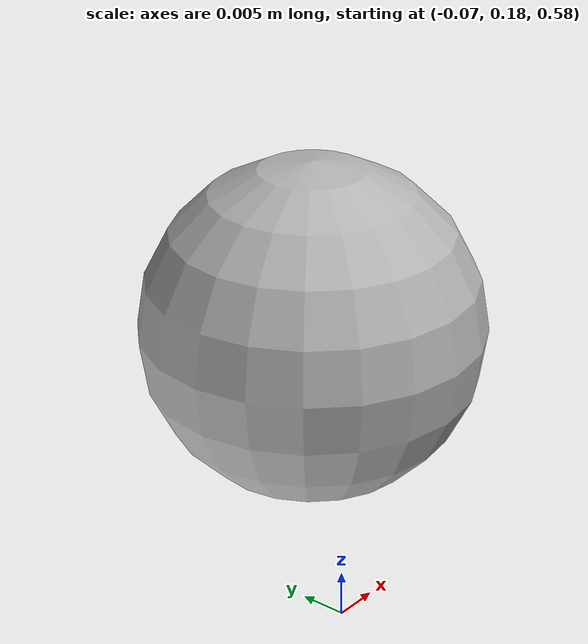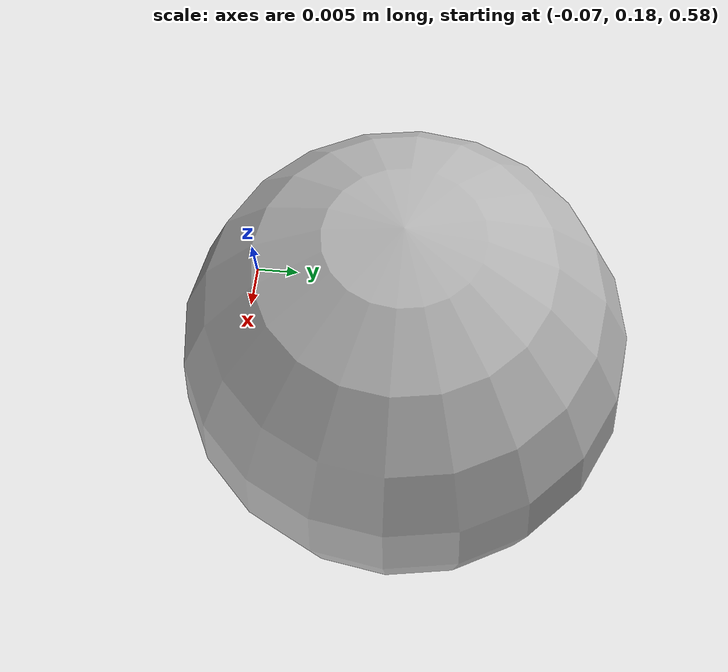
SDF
<?xml version="1.0" ?>
<sdf version="1.4">
  <world name="default">
    <physics type="ode">
      <gravity>0 0 -9.81</gravity>
    </physics>
    <include>
      <uri>model://ground_plane</uri>
    </include>
    <include>
      <uri>model://sun</uri>
    </include>
    <include>
      <uri>model://table_tennis_ball</uri>
      <pose relative_to="world" >-0.05 0.2 0.6 0 0 0</pose>
    </include>
  </world>
</sdf>

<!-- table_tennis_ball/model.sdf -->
<sdf version="1.5">
  <model name="table_tennis_ball">
    <link name="ball">
      <inertial>
        <mass>0.029711</mass>
        <inertia>
          <ixx>7.7923e-06</ixx>
          <ixy>-1.141e-13</ixy>
          <ixz>5.1386e-13</ixz>
          <iyy>7.8054e-06</iyy>
          <iyz>1.9212e-12</iyz>
          <izz>7.7923e-06</izz>
        </inertia>
      </inertial>
      <collision name="collision">
        <geometry>
          <sphere>
	    <radius>0.02</radius>
          </sphere>
        </geometry>
        <surface>
	  <bounce>
	    <restitution_coefficient>0.99</restitution_coefficient>
	    <threshold>0.001</threshold>
	  </bounce>
          <contact>
            <ode>
	      <max_vel>20</max_vel>
	      <min_depth>0.0001</min_depth>
            </ode>
	  </contact>
	  <friction>
	    <ode>
	      <mu>0.9</mu>
	      <mu2>0.4</mu2>
	    </ode>
	  </friction>
	</surface>
      </collision>
      <visual name="visual">
        <geometry>
          <sphere>
            <radius>0.02</radius>
	  </sphere>
        </geometry>
      </visual>
    </link>
    <plugin name="InitialVelocityPlugin" filename="libInitialVelocityPlugin.so">
        <linear>0.1 0 1 </linear>
    </plugin>
    <plugin name="p3d_base_controller" filename="libgazebo_ros_p3d.so">
      <alwaysOn>true</alwaysOn>
      <updateRate>2</updateRate>
      <bodyName>ball</bodyName>
      <topicName>ball_pose</topicName>
      <gaussianNoise>0.00</gaussianNoise>
      <frameName>map</frameName>
      <xyzOffsets>0 0 0</xyzOffsets>
      <rpyOffsets>0 0 0</rpyOffsets>
    </plugin>
  </model>
</sdf>
